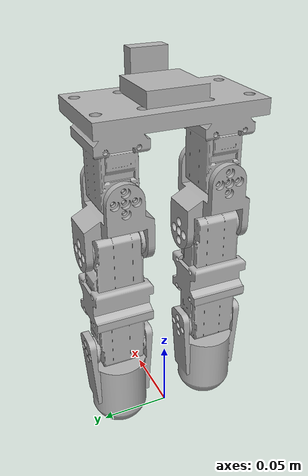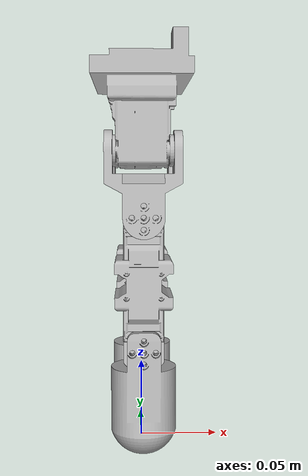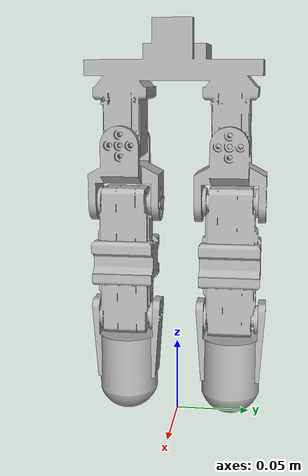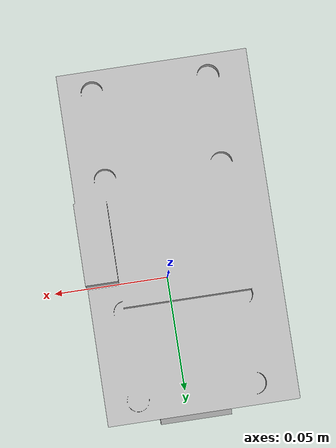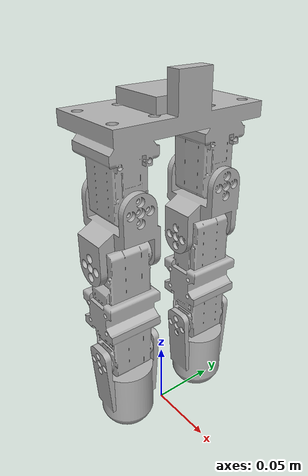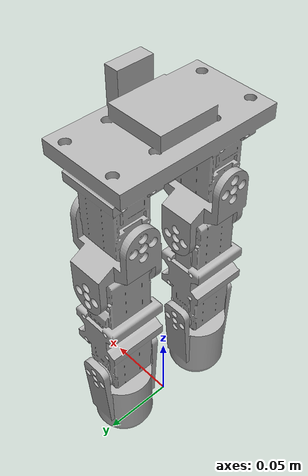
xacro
<?xml version="1.0" ?>
<robot name="biped" xmlns:xacro="http://www.ros.org/wiki/xacro">

<xacro:include filename="$(find biped_description)/urdf/materials.xacro" />
<xacro:include filename="$(find biped_description)/urdf/biped.ros2control" />
<xacro:include filename="$(find biped_description)/urdf/biped.gazebo" />
<link name="base_link">
  <inertial>
    <origin xyz="0.0005141690127301339 0.0007213265656044626 0.22078241836593335" rpy="0 0 0"/>
    <mass value="0.2231820789651064"/>
    <inertia ixx="0.000321" iyy="0.000161" izz="0.000215" ixy="-0.0" iyz="-0.0" ixz="1e-06"/>
  </inertial>
  <visual>
    <origin xyz="0 0 0" rpy="0 0 0"/>
    <geometry>
      <mesh filename="file://$(find biped_description)/meshes/base_link.stl" scale="0.001 0.001 0.001"/>
    </geometry>
    <material name="silver"/>
  </visual>
  <collision>
    <origin xyz="0 0 0" rpy="0 0 0"/>
    <geometry>
      <mesh filename="file://$(find biped_description)/meshes/base_link.stl" scale="0.001 0.001 0.001"/>
    </geometry>
  </collision>
</link>

<link name="r_thigh_1">
  <inertial>
    <origin xyz="-0.018624999999998 3.584222215372024e-06 -0.020003142562198456" rpy="0 0 0"/>
    <mass value="0.005406293259212006"/>
    <inertia ixx="2e-06" iyy="2e-06" izz="2e-06" ixy="-0.0" iyz="0.0" ixz="0.0"/>
  </inertial>
  <visual>
    <origin xyz="-0.0195 0.034638 -0.188138" rpy="0 0 0"/>
    <geometry>
      <mesh filename="file://$(find biped_description)/meshes/r_thigh_1.stl" scale="0.001 0.001 0.001"/>
    </geometry>
    <material name="silver"/>
  </visual>
  <collision>
    <origin xyz="-0.0195 0.034638 -0.188138" rpy="0 0 0"/>
    <geometry>
      <mesh filename="file://$(find biped_description)/meshes/r_thigh_1.stl" scale="0.001 0.001 0.001"/>
    </geometry>
  </collision>
</link>

<link name="r_knee_1">
  <inertial>
    <origin xyz="1.224849360458133e-06 -0.018839800486984776 -0.04011141252578258" rpy="0 0 0"/>
    <mass value="0.1250369115611602"/>
    <inertia ixx="0.000125" iyy="0.00012" izz="1.7e-05" ixy="0.0" iyz="0.0" ixz="0.0"/>
  </inertial>
  <visual>
    <origin xyz="-0.000875 0.016013 -0.148138" rpy="0 0 0"/>
    <geometry>
      <mesh filename="file://$(find biped_description)/meshes/r_knee_1.stl" scale="0.001 0.001 0.001"/>
    </geometry>
    <material name="silver"/>
  </visual>
  <collision>
    <origin xyz="-0.000875 0.016013 -0.148138" rpy="0 0 0"/>
    <geometry>
      <mesh filename="file://$(find biped_description)/meshes/r_knee_1.stl" scale="0.001 0.001 0.001"/>
    </geometry>
  </collision>
</link>

<link name="l_thigh_1">
  <inertial>
    <origin xyz="-0.018624999999902005 4.144345299363084e-06 -0.02000314256219815" rpy="0 0 0"/>
    <mass value="0.005406293259211952"/>
    <inertia ixx="2e-06" iyy="2e-06" izz="2e-06" ixy="0.0" iyz="0.0" ixz="0.0"/>
  </inertial>
  <visual>
    <origin xyz="-0.0195 -0.036085 -0.188138" rpy="0 0 0"/>
    <geometry>
      <mesh filename="file://$(find biped_description)/meshes/l_thigh_1.stl" scale="0.001 0.001 0.001"/>
    </geometry>
    <material name="silver"/>
  </visual>
  <collision>
    <origin xyz="-0.0195 -0.036085 -0.188138" rpy="0 0 0"/>
    <geometry>
      <mesh filename="file://$(find biped_description)/meshes/l_thigh_1.stl" scale="0.001 0.001 0.001"/>
    </geometry>
  </collision>
</link>

<link name="l_knee_1">
  <inertial>
    <origin xyz="5.180346740671685e-06 0.019193169321859733 -0.04049716919173879" rpy="0 0 0"/>
    <mass value="0.12503689107108454"/>
    <inertia ixx="0.000127" iyy="0.000123" izz="1.7e-05" ixy="0.0" iyz="1e-06" ixz="0.0"/>
  </inertial>
  <visual>
    <origin xyz="-0.000875 -0.01746 -0.148888" rpy="0 0 0"/>
    <geometry>
      <mesh filename="file://$(find biped_description)/meshes/l_knee_1.stl" scale="0.001 0.001 0.001"/>
    </geometry>
    <material name="silver"/>
  </visual>
  <collision>
    <origin xyz="-0.000875 -0.01746 -0.148888" rpy="0 0 0"/>
    <geometry>
      <mesh filename="file://$(find biped_description)/meshes/l_knee_1.stl" scale="0.001 0.001 0.001"/>
    </geometry>
  </collision>
</link>

<link name="r_foot_1">
  <inertial>
    <origin xyz="6.561913252350893e-11 -0.01850021978939905 -0.03471699506948471" rpy="0 0 0"/>
    <mass value="0.013462439028098957"/>
    <inertia ixx="5e-06" iyy="5e-06" izz="3e-06" ixy="-0.0" iyz="0.0" ixz="0.0"/>
  </inertial>
  <visual>
    <origin xyz="-0.000875 0.016013 -0.067915" rpy="0 0 0"/>
    <geometry>
      <mesh filename="file://$(find biped_description)/meshes/r_foot_1.stl" scale="0.001 0.001 0.001"/>
    </geometry>
    <material name="silver"/>
  </visual>
  <collision>
    <origin xyz="-0.000875 0.016013 -0.067915" rpy="0 0 0"/>
    <geometry>
      <mesh filename="file://$(find biped_description)/meshes/r_foot_1.stl" scale="0.001 0.001 0.001"/>
    </geometry>
  </collision>
</link>

<link name="l_foot_1">
  <inertial>
    <origin xyz="-6.561895558171438e-11 -0.01849965966621809 -0.03471699506948443" rpy="0 0 0"/>
    <mass value="0.013462439028098952"/>
    <inertia ixx="5e-06" iyy="5e-06" izz="3e-06" ixy="-0.0" iyz="0.0" ixz="-0.0"/>
  </inertial>
  <visual>
    <origin xyz="-0.000875 -0.05586 -0.067915" rpy="0 0 0"/>
    <geometry>
      <mesh filename="file://$(find biped_description)/meshes/l_foot_1.stl" scale="0.001 0.001 0.001"/>
    </geometry>
    <material name="silver"/>
  </visual>
  <collision>
    <origin xyz="-0.000875 -0.05586 -0.067915" rpy="0 0 0"/>
    <geometry>
      <mesh filename="file://$(find biped_description)/meshes/l_foot_1.stl" scale="0.001 0.001 0.001"/>
    </geometry>
  </collision>
</link>

<joint name="r_up" type="revolute">
  <origin xyz="0.0195 -0.034638 0.188138" rpy="0 0 0"/>
  <parent link="base_link"/>
  <child link="r_thigh_1"/>
  <axis xyz="1.0 -0.0 -0.0"/>
  <limit upper="0.436332" lower="-0.436332" effort="100" velocity="100"/>
</joint>

<joint name="r_mid" type="revolute">
  <origin xyz="-0.018625 0.018625 -0.04" rpy="0 0 0"/>
  <parent link="r_thigh_1"/>
  <child link="r_knee_1"/>
  <axis xyz="-0.0 -1.0 0.0"/>
  <limit upper="0.436332" lower="-0.436332" effort="100" velocity="100"/>
</joint>

<joint name="l_up" type="revolute">
  <origin xyz="0.0195 0.036085 0.188138" rpy="0 0 0"/>
  <parent link="base_link"/>
  <child link="l_thigh_1"/>
  <axis xyz="1.0 -0.0 -0.0"/>
  <limit upper="0.436332" lower="-0.436332" effort="100" velocity="100"/>
</joint>

<joint name="l_mid" type="revolute">
  <origin xyz="-0.018625 -0.018625 -0.03925" rpy="0 0 0"/>
  <parent link="l_thigh_1"/>
  <child link="l_knee_1"/>
  <axis xyz="0.0 1.0 0.0"/>
  <limit upper="0.436332" lower="-0.436332" effort="100" velocity="100"/>
</joint>

<joint name="r_down" type="revolute">
  <origin xyz="0.0 0.0 -0.080223" rpy="0 0 0"/>
  <parent link="r_knee_1"/>
  <child link="r_foot_1"/>
  <axis xyz="-0.0 1.0 0.0"/>
  <limit upper="0.436332" lower="-0.436332" effort="100" velocity="100"/>
</joint>

<joint name="l_down" type="revolute">
  <origin xyz="0.0 0.0384 -0.080973" rpy="0 0 0"/>
  <parent link="l_knee_1"/>
  <child link="l_foot_1"/>
  <axis xyz="0.0 1.0 0.0"/>
  <limit upper="0.436332" lower="-0.436332" effort="100" velocity="100"/>
</joint>

</robot>

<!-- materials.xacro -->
<robot name="biped" xmlns:xacro="http://www.ros.org/wiki/xacro" >

<material name="silver">
  <color rgba="0.700 0.700 0.700 1.000"/>
</material>

</robot>

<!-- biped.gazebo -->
<robot name="biped" xmlns:xacro="http://www.ros.org/wiki/xacro" >

<xacro:property name="body_color" value="Gazebo/Silver" />

<gazebo reference="base_link">
  <material>${body_color}</material>
  <mu1>0.2</mu1>
  <mu2>0.2</mu2>
  <self_collide>true</self_collide>
  <gravity>true</gravity>
</gazebo>

<gazebo reference="r_thigh_1">
  <material>${body_color}</material>
  <mu1>0.2</mu1>
  <mu2>0.2</mu2>
  <self_collide>true</self_collide>
</gazebo>

<gazebo reference="r_knee_1">
  <material>${body_color}</material>
  <mu1>0.2</mu1>
  <mu2>0.2</mu2>
  <self_collide>true</self_collide>
</gazebo>

<gazebo reference="l_thigh_1">
  <material>${body_color}</material>
  <mu1>0.2</mu1>
  <mu2>0.2</mu2>
  <self_collide>true</self_collide>
</gazebo>

<gazebo reference="l_knee_1">
  <material>${body_color}</material>
  <mu1>0.2</mu1>
  <mu2>0.2</mu2>
  <self_collide>true</self_collide>
</gazebo>

<gazebo reference="r_foot_1">
  <material>${body_color}</material>
  <mu1>0.2</mu1>
  <mu2>0.2</mu2>
  <self_collide>true</self_collide>
</gazebo>

<gazebo reference="l_foot_1">
  <material>${body_color}</material>
  <mu1>0.2</mu1>
  <mu2>0.2</mu2>
  <self_collide>true</self_collide>
</gazebo>

</robot>
